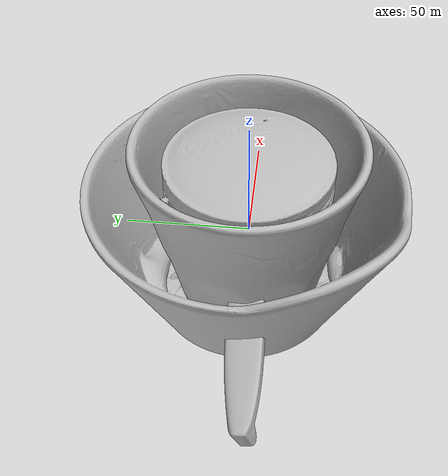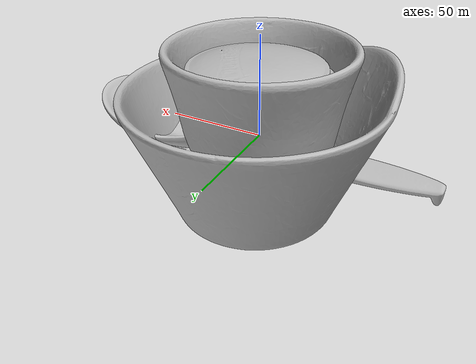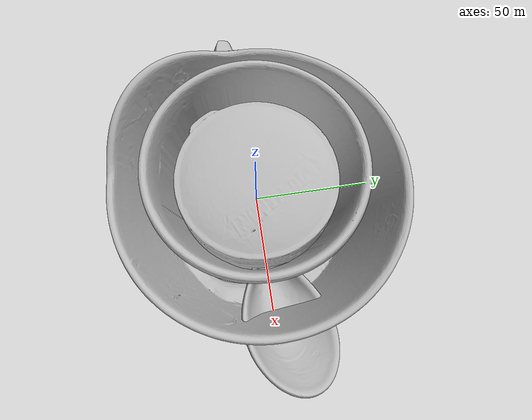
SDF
<sdf version="1.4">
 <world name="default">
  <light name="light1" type="point">
   <pose>0 0 1 0 0 0</pose>
   <diffuse>3 3 3 1</diffuse>
   <specular>3 3 3 1</specular>
  </light>
  <light name="light2" type="point">
   <pose>0 0.5 2 0 0 0</pose>
   <diffuse>1 1 1 1</diffuse>
   <specular>1 1 1 1</specular>
  </light>
  <light name="light3" type="point">
   <pose>0 0.5 2 0 0 0</pose>
   <diffuse>3 3 3 1</diffuse>
   <specular>3 3 3 1</specular>
  </light>
  <scene><ambient>0.7 0.7 0.7</ambient></scene>
  <model name="bottle1">
   <link name="link_bottle1">
    <collision name="default">
     <geometry>
      <mesh><uri>model://green_arrow/collision_meshes/collision.obj</uri><scale>1.0 1.0 1.0</scale></mesh>
     </geometry>
     <surface>
      <friction><ode><mu>0.5</mu><mu2>0.5</mu2></ode></friction>
      <contact><ode><max_vel>0</max_vel><min_depth>0.0001</min_depth><kp>1e8</kp></ode></contact>
     </surface>
    </collision>
    <visual name="default">
     <geometry>
      <mesh><uri>model://green_arrow/visual_meshes/visual.dae</uri><scale>1.0 1.0 1.0</scale></mesh>
     </geometry>
    </visual>
    <inertial>
     <mass>0.2764224410057068</mass>
     <pose>0.0005358477937988937 -0.0008270691032521427 0.002210969105362892 -0.06332196008274972 0.012988210902137025 0.674142157837799</pose>
     <inertia>
      <ixx>0.00020051825</ixx>
      <iyy>0.00020021446</iyy>
      <izz>0.00012947427</izz>
      <ixy>0</ixy>
      <ixz>0</ixz>
      <iyz>0</iyz>
     </inertia>
    </inertial>
   </link>
   <pose>0.17960409820079803 -0.2257499396800995 0.03896165266633034 0.04528529361191071 0.02425620569418597 1.417159765735632</pose>
  </model>
  <model name="bottle2">
   <link name="link_bottle2">
    <collision name="default">
     <geometry>
      <mesh><uri>model://pure_zhen/collision_meshes/collision.obj</uri><scale>1.0 1.0 1.0</scale></mesh>
     </geometry>
     <surface>
      <friction><ode><mu>0.5</mu><mu2>0.5</mu2></ode></friction>
      <contact><ode><max_vel>0</max_vel><min_depth>0.0001</min_depth><kp>1e8</kp></ode></contact>
     </surface>
    </collision>
    <visual name="default">
     <geometry>
      <mesh><uri>model://pure_zhen/visual_meshes/visual.dae</uri><scale>1.0 1.0 1.0</scale></mesh>
     </geometry>
    </visual>
    <inertial>
     <mass>0.2372884750366211</mass>
     <pose>-8.582299778936431e-05 0.0002452346670906991 -0.0015797418309375644 -0.027641670524606855 0.005623077019143168 0.30585846122319743</pose>
     <inertia>
      <ixx>0.0007112664</ixx>
      <iyy>0.00071145216</iyy>
      <izz>7.51383e-05</izz>
      <ixy>0</ixy>
      <ixz>0</ixz>
      <iyz>0</iyz>
     </inertia>
    </inertial>
   </link>
   <pose>0.022116947919130325 -0.23096896708011627 0.09195055812597275 0.019186220135967495 -0.014309039210580281 -1.402673994106788</pose>
  </model>
  <model name="silverware1">
   <link name="link_silverware1">
    <collision name="default">
     <geometry>
      <mesh><uri>model://doraemon_spoon/collision_meshes/collision.obj</uri><scale>1.0 1.0 1.0</scale></mesh>
     </geometry>
     <surface>
      <friction><ode><mu>0.5</mu><mu2>0.5</mu2></ode></friction>
      <contact><ode><max_vel>0</max_vel><min_depth>0.0001</min_depth><kp>1e8</kp></ode></contact>
     </surface>
    </collision>
    <visual name="default">
     <geometry>
      <mesh><uri>model://doraemon_spoon/visual_meshes/visual.dae</uri><scale>1.0 1.0 1.0</scale></mesh>
     </geometry>
    </visual>
    <inertial>
     <mass>0.020818473771214485</mass>
     <pose>-0.022165074944496155 -0.0006374582881107926 -0.0033325462136417627 -0.009147017253597407 0.0738041759980984 -0.014123826591698564</pose>
     <inertia>
      <ixx>1.6307007e-06</ixx>
      <iyy>4.631433e-05</iyy>
      <izz>4.7101734e-05</izz>
      <ixy>0</ixy>
      <ixz>0</ixz>
      <iyz>0</iyz>
     </inertia>
    </inertial>
   </link>
   <pose>0.04688175767660141 0.36780497431755066 0.01473943330347538 0.2787855740835321 -0.010335704618479028 -3.07505226428661</pose>
  </model>
  <model name="stationery1">
   <link name="link_stationery1">
    <collision name="default">
     <geometry>
      <mesh><uri>model://correction_fuid/collision_meshes/collision.obj</uri><scale>1.0 1.0 1.0</scale></mesh>
     </geometry>
     <surface>
      <friction><ode><mu>0.5</mu><mu2>0.5</mu2></ode></friction>
      <contact><ode><max_vel>0</max_vel><min_depth>0.0001</min_depth><kp>1e8</kp></ode></contact>
     </surface>
    </collision>
    <visual name="default">
     <geometry>
      <mesh><uri>model://correction_fuid/visual_meshes/visual.dae</uri><scale>1.0 1.0 1.0</scale></mesh>
     </geometry>
    </visual>
    <inertial>
     <mass>0.03337494283914566</mass>
     <pose>-0.00012557735317386687 -0.0009722886024974287 -0.001618212671019137 -0.010846603423614418 0.019488389217657873 -0.01599245375892703</pose>
     <inertia>
      <ixx>3.2324202e-05</ixx>
      <iyy>1.9563013e-06</iyy>
      <izz>3.3165503e-05</izz>
      <ixy>0</ixy>
      <ixz>0</ixz>
      <iyz>0</iyz>
     </inertia>
    </inertial>
   </link>
   <pose>-0.06695063412189484 -0.3469694256782532 0.009632832370698452 -0.0017271723140068061 -0.05616843473610919 0.4981060819795479</pose>
  </model>
  <model name="bowl1">
   <link name="link_bowl1">
    <collision name="default">
     <geometry>
      <mesh><uri>model://hello_kitty_bowl/collision_meshes/collision.obj</uri><scale>1.0 1.0 1.0</scale></mesh>
     </geometry>
     <surface>
      <friction><ode><mu>0.5</mu><mu2>0.5</mu2></ode></friction>
      <contact><ode><max_vel>0</max_vel><min_depth>0.0001</min_depth><kp>1e8</kp></ode></contact>
     </surface>
    </collision>
    <visual name="default">
     <geometry>
      <mesh><uri>model://hello_kitty_bowl/visual_meshes/visual.dae</uri><scale>1.0 1.0 1.0</scale></mesh>
     </geometry>
    </visual>
    <inertial>
     <mass>0.11590971797704697</mass>
     <pose>-0.0015402117278426886 0.0004577837826218456 -0.0080512510612607 0.004152729053700843 -0.12227221811834889 0.04345084117661168</pose>
     <inertia>
      <ixx>0.00017210246</ixx>
      <iyy>0.00018182951</iyy>
      <izz>0.00025734986</izz>
      <ixy>0</ixy>
      <ixz>0</ixz>
      <iyz>0</iyz>
     </inertia>
    </inertial>
   </link>
   <pose>-0.00638895109295845 0.09119880944490433 0.03741227835416794 0.0003154672952959911 -3.866912575914353e-05 -2.561222960955507</pose>
  </model>
  <model name="cup1">
   <link name="link_cup1">
    <collision name="default">
     <geometry>
      <mesh><uri>model://hello_kitty_cup/collision_meshes/collision.obj</uri><scale>1.0 1.0 1.0</scale></mesh>
     </geometry>
     <surface>
      <friction><ode><mu>0.5</mu><mu2>0.5</mu2></ode></friction>
      <contact><ode><max_vel>0</max_vel><min_depth>0.0001</min_depth><kp>1e8</kp></ode></contact>
     </surface>
    </collision>
    <visual name="default">
     <geometry>
      <mesh><uri>model://hello_kitty_cup/visual_meshes/visual.dae</uri><scale>1.0 1.0 1.0</scale></mesh>
     </geometry>
    </visual>
    <inertial>
     <mass>0.06483803689479828</mass>
     <pose>0.00027251249412074685 0.0002795030304696411 0.003044978016987443 0.05779149237921037 0.007964744961503711 -0.020451485374324563</pose>
     <inertia>
      <ixx>8.928983e-05</ixx>
      <iyy>9.0285175e-05</iyy>
      <izz>7.52867e-05</izz>
      <ixy>0</ixy>
      <ixz>0</ixz>
      <iyz>0</iyz>
     </inertia>
    </inertial>
   </link>
   <pose>-0.041402462869882584 -0.24273355305194855 0.04625469818711281 -0.008689306984980678 0.010976463497544789 2.090431437896968</pose>
  </model>
  <model name="plate1">
   <link name="link_plate1">
    <collision name="default">
     <geometry>
      <mesh><uri>model://hello_kitty_plate/collision_meshes/collision.obj</uri><scale>1.0 1.0 1.0</scale></mesh>
     </geometry>
     <surface>
      <friction><ode><mu>0.5</mu><mu2>0.5</mu2></ode></friction>
      <contact><ode><max_vel>0</max_vel><min_depth>0.0001</min_depth><kp>1e8</kp></ode></contact>
     </surface>
    </collision>
    <visual name="default">
     <geometry>
      <mesh><uri>model://hello_kitty_plate/visual_meshes/visual.dae</uri><scale>1.0 1.0 1.0</scale></mesh>
     </geometry>
    </visual>
    <inertial>
     <mass>0.035439908504486084</mass>
     <pose>0.007314295507967472 0.00028937257593497634 -0.0027947179041802883 -0.00010432032854243346 -0.007054443681780748 -0.014449040989024118</pose>
     <inertia>
      <ixx>6.833875e-05</ixx>
      <iyy>0.00012897578</iyy>
      <izz>0.00019583687</izz>
      <ixy>0</ixy>
      <ixz>0</ixz>
      <iyz>0</iyz>
     </inertia>
    </inertial>
   </link>
   <pose>-0.009111672639846802 -0.32170143723487854 0.06628762930631638 0.36427020690229145 0.6155572063513276 -0.4469612940715521</pose>
  </model>
  <model name="box4">
   <link name="link_box4">
    <collision name="default">
     <geometry>
      <mesh><uri>model://wooden_puzzle1/collision_meshes/collision.obj</uri><scale>1.0 1.0 1.0</scale></mesh>
     </geometry>
     <surface>
      <friction><ode><mu>0.5</mu><mu2>0.5</mu2></ode></friction>
      <contact><ode><max_vel>0</max_vel><min_depth>0.0001</min_depth><kp>1e8</kp></ode></contact>
     </surface>
    </collision>
    <visual name="default">
     <geometry>
      <mesh><uri>model://wooden_puzzle1/visual_meshes/visual.dae</uri><scale>1.0 1.0 1.0</scale></mesh>
     </geometry>
    </visual>
    <inertial>
     <mass>0.022725893184542656</mass>
     <pose>-0.00017350679263472557 7.972260937094688e-05 -9.191554272547364e-05 -0.07784633272711022 -0.26361483493671084 -0.5528696267966513</pose>
     <inertia>
      <ixx>4.2877546e-06</ixx>
      <iyy>4.205213e-06</iyy>
      <izz>4.2553816e-06</izz>
      <ixy>0</ixy>
      <ixz>0</ixz>
      <iyz>0</iyz>
     </inertia>
    </inertial>
   </link>
   <pose>0.10391445457935333 0.32431745529174805 0.01680201105773449 0.010511926614800255 -0.009455212888519991 -2.3256916855274166</pose>
  </model>
  <physics type="ode">
   <max_contacts>50</max_contacts>
   <ode>
    <solver><type>quick</type><iters>75</iters></solver>
    <constraints>
     <contact_max_correcting_vel>0</contact_max_correcting_vel>
     <contact_surface_layer>0</contact_surface_layer>
    </constraints>
   </ode>
  </physics>
 </world>
</sdf>
